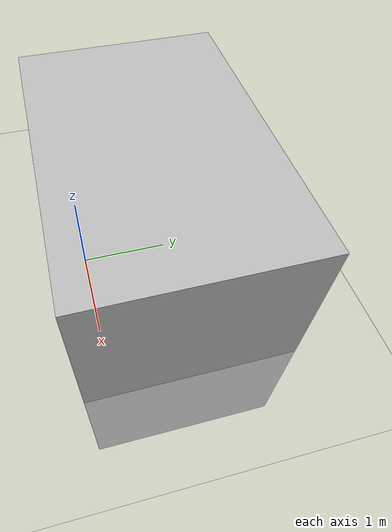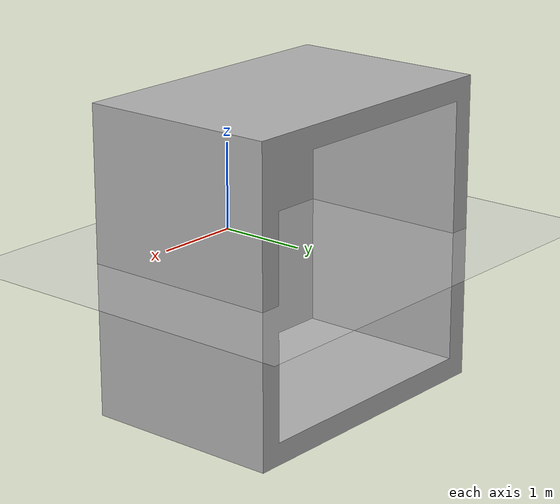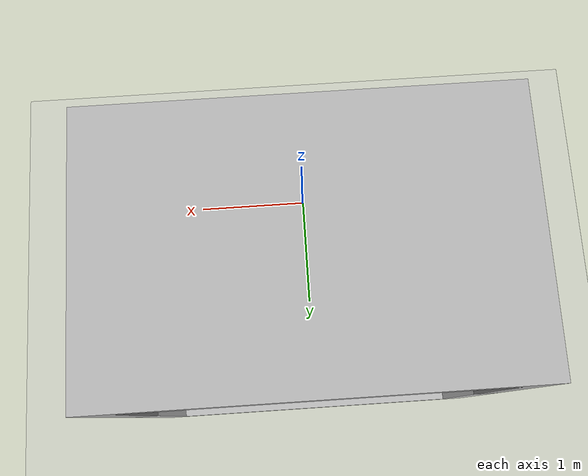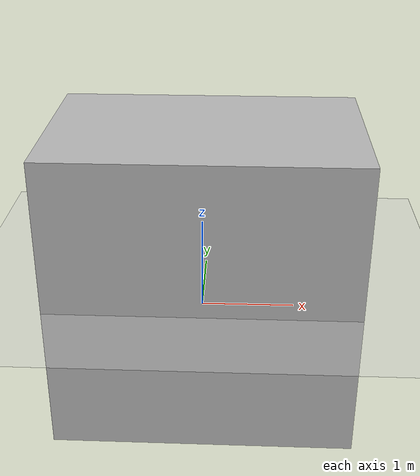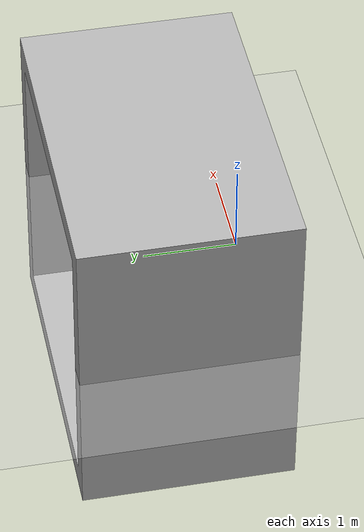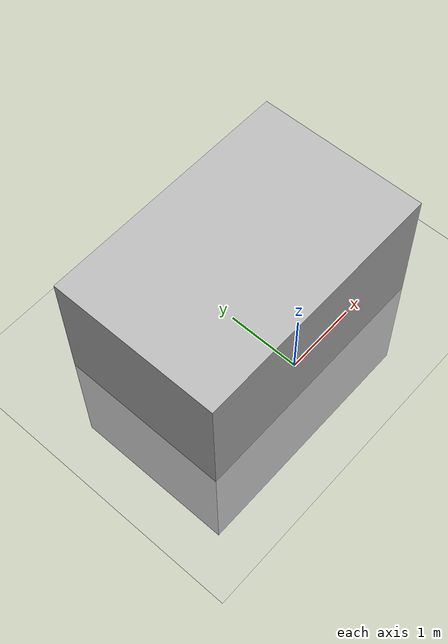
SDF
<?xml version="1.0" ?>
<sdf version="1.6">
  <world name="default">
    <include>
      <uri>model://ground_plane</uri>
      <static>true</static>
    </include>
    <include>
      <uri>model://sun</uri>
      <static>true</static>
    </include>
    <include>
      <uri>model://areena_no_pit2</uri>
      <name>areena_no_pit2</name>
      <pose> 0 0 0 0 0 0</pose>
      <static>true</static>
    </include>
  </world>
</sdf>

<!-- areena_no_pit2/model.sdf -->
<sdf version='1.6'>
  <model name='areena_no_pit2'>
    <link name='link_1'>
      <pose>-0 -0 0 0 -0 0</pose>
      <inertial>
        <mass>1</mass>
        <inertia>
          <ixx>0.166667</ixx>
          <ixy>0</ixy>
          <ixz>0</ixz>
          <iyy>0.166667</iyy>
          <iyz>0</iyz>
          <izz>0.166667</izz>
        </inertia>
      </inertial>
      <visual name='visual'>
        <pose>0 0 0 0 -0 0</pose>
        <geometry>
          <mesh>
            <uri>model://areena_no_pit2/areena4.stl</uri>
            <scale>1 1 1</scale>
          </mesh>
        </geometry>
        <material>
          <lighting>1</lighting>
          <color rgba="0.2 0.2 0.2 1.0"/>
          <shader type='pixel'/>
          <ambient>0.3 0.3 0.3 1</ambient>
          <diffuse>0.7 0.7 0.7 1</diffuse>
          <specular>0.01 0.01 0.01 1</specular>
          <emissive>0 0 0 1</emissive>
        </material>
        <transparency>0</transparency>
        <cast_shadows>1</cast_shadows>
      </visual>
      <collision name='collision'>
        <laser_retro>0</laser_retro>
        <max_contacts>10</max_contacts>
        <pose>0 0 0 0 -0 0</pose>
        <geometry>
          <mesh>
            <uri>model://areena_no_pit2/areena4.stl</uri>
            <scale>1 1 1</scale>
          </mesh>
        </geometry>
        <surface>
          <friction>
            <ode>
              <mu>1</mu>
              <mu2>1</mu2>
              <fdir1>0 0 0</fdir1>
              <slip1>0</slip1>
              <slip2>0</slip2>
            </ode>
            <torsional>
              <coefficient>1</coefficient>
              <patch_radius>0</patch_radius>
              <surface_radius>0</surface_radius>
              <use_patch_radius>1</use_patch_radius>
              <ode>
                <slip>0</slip>
              </ode>
            </torsional>
          </friction>
          <bounce>
            <restitution_coefficient>0</restitution_coefficient>
            <threshold>1e+06</threshold>
          </bounce>
          <contact>
            <collide_without_contact>0</collide_without_contact>
            <collide_without_contact_bitmask>1</collide_without_contact_bitmask>
            <collide_bitmask>1</collide_bitmask>
            <ode>
              <soft_cfm>0</soft_cfm>
              <soft_erp>0.2</soft_erp>
              <kp>1e+13</kp>
              <kd>1</kd>
              <max_vel>0.01</max_vel>
              <min_depth>0</min_depth>
            </ode>
            <bullet>
              <split_impulse>1</split_impulse>
              <split_impulse_penetration_threshold>-0.01</split_impulse_penetration_threshold>
              <soft_cfm>0</soft_cfm>
              <soft_erp>0.2</soft_erp>
              <kp>1e+13</kp>
              <kd>1</kd>
            </bullet>
          </contact>
        </surface>
      </collision>
    </link>
    <static>0</static>
    <allow_auto_disable>1</allow_auto_disable>
  </model>
</sdf>
